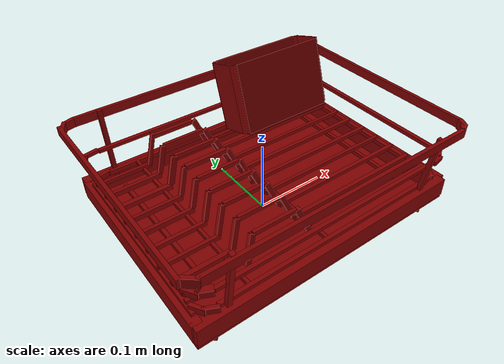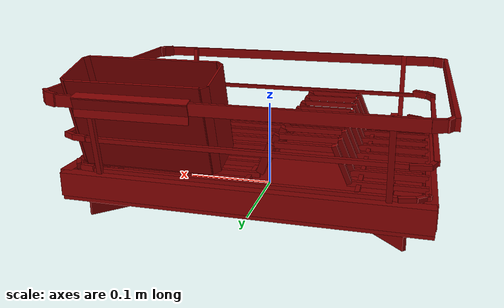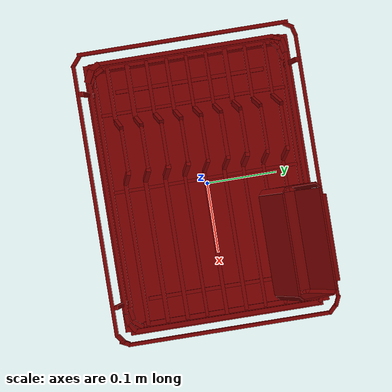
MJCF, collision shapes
<mujoco model="model">
  <compiler angle="radian"/>
  <asset>
    <mesh file="visuals/DishRack026.obj" name="vis"/>
    <texture file="visuals/T_BC001.png" name="material" type="2d"/>
    <material name="material" rgba="1 1 1 1.0" texture="material" shininess="0.4472135901451111" specular="0.3103448502657381"/>
  </asset>
  <default>
    <default class="visual">
      <geom conaffinity="0" contype="0" group="1" type="mesh"/>
    </default>
    <default class="collision">
      <geom group="0" rgba="0.5 0 0 0.5"/>
    </default>
    <default class="region">
      <geom group="1" conaffinity="0" contype="0" rgba="0 1 0 0"/>
    </default>
  </default>
  <worldbody>
    <body>
      <body name="object">
        <geom mesh="vis" type="mesh" solimp="0.998 0.998 0.001" solref="0.001 1" density="100" friction="0.95 0.3 0.1" class="visual" material="material"/>
        <geom class="collision" type="box" pos="0.08329305052757263 -0.001698613166809082 0.05445064976811409" size="0.10270288586616516 0.0026440024375915527 0.0026440024375915527" quat="7.549790126404332e-08 0.0 -0.0 -1.0"/>
        <geom class="collision" type="box" pos="-0.14379674196243286 -0.0016985982656478882 0.05445065349340439" size="0.03854243457317352 0.002292483812198043 0.0034555692691355944" quat="7.549790126404332e-08 0.0 -0.0 -1.0"/>
        <geom class="collision" type="box" pos="-0.0627226009964943 0.005875155329704285 0.09029363840818405" size="0.0298176072537899 0.002258744789287448 0.002781747840344906" quat="7.549790126404332e-08 0.0 -0.0 -1.0"/>
        <geom class="collision" type="box" pos="-0.10026074945926666 0.002629787428304553 0.07460619509220123" size="0.01863647811114788 0.002596606034785509 0.003222791478037834" quat="0.05916285142302513 0.570796012878418 -0.09514839947223663 -0.8134115934371948"/>
        <geom class="collision" type="box" pos="-0.02435043454170227 0.0024863805156201124 0.0742243155837059" size="0.01863648183643818 0.0022587452549487352 0.002897978527471423" quat="0.02136722207069397 0.8232117891311646 -0.10998589545488358 -0.5565688610076904"/>
        <geom class="collision" type="box" pos="0.08329304307699203 0.026372630149126053 0.05445064976811409" size="0.10087007284164429 0.0026794103905558586 0.002676483476534486" quat="7.549790126404332e-08 0.0 -0.0 -1.0"/>
        <geom class="collision" type="box" pos="-0.14379674196243286 0.026372656226158142 0.05445065349340439" size="0.03854243457317352 0.002258744789287448 0.003400446381419897" quat="7.549790126404332e-08 0.0 -0.0 -1.0"/>
        <geom class="collision" type="box" pos="-0.0627226009964943 0.03394640237092972 0.09029363840818405" size="0.0298176072537899 0.002940716687589884 0.0031736386008560658" quat="7.549790126404332e-08 0.0 -0.0 -1.0"/>
        <geom class="collision" type="box" pos="-0.09990579634904861 0.030668074265122414 0.07448145747184753" size="0.01863648183643818 0.0025007566437125206 0.0028824247419834137" quat="0.05916285142302513 0.570796012878418 -0.09514839947223663 -0.8134115934371948"/>
        <geom class="collision" type="box" pos="-0.024211950600147247 0.03054450824856758 0.07428138703107834" size="0.018636485561728477 0.0025354023091495037 0.0031442022882401943" quat="0.02136722207069397 0.8232117891311646 -0.10998589545488358 -0.5565688610076904"/>
        <geom class="collision" type="box" pos="0.08329305052757263 0.05337385833263397 0.05445064976811409" size="0.10087007284164429 0.002258744789287448 0.0026552986819297075" quat="7.549790126404332e-08 0.0 -0.0 -1.0"/>
        <geom class="collision" type="box" pos="-0.14379674196243286 0.05337388813495636 0.05445065349340439" size="0.03854243457317352 0.003342311829328537 0.0031907514203339815" quat="7.549790126404332e-08 0.0 -0.0 -1.0"/>
        <geom class="collision" type="box" pos="-0.0627226009964943 0.061511632055044174 0.09029363840818405" size="0.0298176072537899 0.0025008583907037973 0.00265436596237123" quat="7.549790126404332e-08 0.0 -0.0 -1.0"/>
        <geom class="collision" type="box" pos="-0.09939204156398773 0.05762161314487457 0.07430092245340347" size="0.01863647997379303 0.0022587450221180916 0.004188038408756256" quat="0.05916285142302513 0.570796012878418 -0.09514839947223663 -0.8134115934371948"/>
        <geom class="collision" type="box" pos="-0.025012902915477753 0.05762161314487457 0.07395131886005402" size="0.01863648183643818 0.0030717826448380947 0.003718895837664604" quat="0.02136722207069397 0.8232117891311646 -0.10998589545488358 -0.5565688610076904"/>
        <geom class="collision" type="box" pos="0.08329304307699203 0.08161381632089615 0.05445064976811409" size="0.10087007284164429 0.002258744789287448 0.002851944649592042" quat="7.549790126404332e-08 0.0 -0.0 -1.0"/>
        <geom class="collision" type="box" pos="-0.14379674196243286 0.08161382377147675 0.05445065349340439" size="0.03854243457317352 0.0024089720100164413 0.003414676757529378" quat="7.549790126404332e-08 0.0 -0.0 -1.0"/>
        <geom class="collision" type="box" pos="-0.0627225935459137 0.08976434171199799 0.09029363840818405" size="0.0298176072537899 0.002258744789287448 0.0028649321757256985" quat="7.549790126404332e-08 0.0 -0.0 -1.0"/>
        <geom class="collision" type="box" pos="-0.09983062744140625 0.08590226620435715 0.07445505261421204" size="0.01863647624850273 0.0022587445564568043 0.0033641743939369917" quat="0.05916285142302513 0.570796012878418 -0.09514839947223663 -0.8134115934371948"/>
        <geom class="collision" type="box" pos="-0.023928631097078323 0.08575883507728577 0.07439813017845154" size="0.01863648183643818 0.0022587452549487352 0.003586377250030637" quat="0.02136722207069397 0.8232117891311646 -0.10998589545488358 -0.5565688610076904"/>
        <geom class="collision" type="box" pos="0.08329307287931442 0.10997990518808365 0.05445064976811409" size="0.10087007284164429 0.002258744789287448 0.002666654996573925" quat="7.549790126404332e-08 0.0 -0.0 -1.0"/>
        <geom class="collision" type="box" pos="-0.14379674196243286 0.10997991263866425 0.05445065349340439" size="0.03854243457317352 0.002258744789287448 0.0026470862794667482" quat="7.549790126404332e-08 0.0 -0.0 -1.0"/>
        <geom class="collision" type="box" pos="-0.0627225860953331 0.11755368113517761 0.09029363840818405" size="0.02897796593606472 0.002576015889644623 0.0028175460174679756" quat="7.549790126404332e-08 0.0 -0.0 -1.0"/>
        <geom class="collision" type="box" pos="-0.10010094940662384 0.11429347097873688 0.07455004751682281" size="0.021772366017103195 0.0026388149708509445 0.002638814738020301" quat="0.05916285142302513 0.570796012878418 -0.09514839947223663 -0.8134115934371948"/>
        <geom class="collision" type="box" pos="-0.024607468396425247 0.1141892597079277 0.07411838322877884" size="0.01863648183643818 0.0022587452549487352 0.004043851513415575" quat="0.02136722207069397 0.8232117891311646 -0.10998589545488358 -0.5565688610076904"/>
        <geom class="collision" type="box" pos="0.08329305052757263 -0.02957513928413391 0.05445064976811409" size="0.10087007284164429 0.002258744789287448 0.0026656959671527147" quat="7.549790126404332e-08 0.0 -0.0 -1.0"/>
        <geom class="collision" type="box" pos="-0.14379674196243286 -0.02957511693239212 0.05445065349340439" size="0.03854243457317352 0.002482115523889661 0.0029365161899477243" quat="7.549790126404332e-08 0.0 -0.0 -1.0"/>
        <geom class="collision" type="box" pos="-0.0627226009964943 -0.022001363337039948 0.09029363840818405" size="0.0298176072537899 0.002258744789287448 0.0028855446726083755" quat="7.549790126404332e-08 0.0 -0.0 -1.0"/>
        <geom class="collision" type="box" pos="-0.10005426406860352 -0.025265900418162346 0.07453364133834839" size="0.01863647997379303 0.002740719588473439 0.002955965232104063" quat="0.05916285142302513 0.570796012878418 -0.09514839947223663 -0.8134115934371948"/>
        <geom class="collision" type="box" pos="-0.02501291036605835 -0.025327390059828758 0.07395132631063461" size="0.01863648183643818 0.0028797637205570936 0.003790716640651226" quat="0.02136722207069397 0.8232117891311646 -0.10998589545488358 -0.5565688610076904"/>
        <geom class="collision" type="box" pos="0.08329305052757263 -0.05736041069030762 0.05445064976811409" size="0.10087007284164429 0.0027472779620438814 0.002583146095275879" quat="7.549790126404332e-08 0.0 -0.0 -1.0"/>
        <geom class="collision" type="box" pos="-0.14379674196243286 -0.05780881270766258 0.05445065349340439" size="0.03960170969367027 0.002381016733124852 0.0028600716032087803" quat="7.549790126404332e-08 0.0 -0.0 -1.0"/>
        <geom class="collision" type="box" pos="-0.0627225935459137 -0.049786631017923355 0.09029363840818405" size="0.0298176072537899 0.002258744789287448 0.0028024690691381693" quat="7.549790126404332e-08 0.0 -0.0 -1.0"/>
        <geom class="collision" type="box" pos="-0.09991827607154846 -0.05306379497051239 0.07448584586381912" size="0.01863647997379303 0.003043936099857092 0.002951392438262701" quat="0.05916285142302513 0.570796012878418 -0.09514839947223663 -0.8134115934371948"/>
        <geom class="collision" type="box" pos="-0.02501290664076805 -0.053112659603357315 0.07395131886005402" size="0.01863648183643818 0.00320336758159101 0.0035383941140025854" quat="0.02136722207069397 0.8232117891311646 -0.10998589545488358 -0.5565688610076904"/>
        <geom class="collision" type="box" pos="0.08329303562641144 -0.08542197197675705 0.05445064976811409" size="0.10087007284164429 0.0028494030702859163 0.0027157177682965994" quat="7.549790126404332e-08 0.0 -0.0 -1.0"/>
        <geom class="collision" type="box" pos="-0.14379674196243286 -0.08542196452617645 0.05445065349340439" size="0.03854243457317352 0.0031967235263437033 0.0030366668943315744" quat="7.549790126404332e-08 0.0 -0.0 -1.0"/>
        <geom class="collision" type="box" pos="-0.0627225935459137 -0.07784822583198547 0.09029363840818405" size="0.0298176072537899 0.002258744789287448 0.0031727340538054705" quat="7.549790126404332e-08 0.0 -0.0 -1.0"/>
        <geom class="collision" type="box" pos="-0.09939205646514893 -0.08117421716451645 0.07430091500282288" size="0.01863647997379303 0.0027686443645507097 0.0032172317150980234" quat="0.05916285142302513 0.570796012878418 -0.09514839947223663 -0.8134115934371948"/>
        <geom class="collision" type="box" pos="-0.025012917816638947 -0.08117423951625824 0.07395132631063461" size="0.018636485561728477 0.003174042562022805 0.003173069329932332" quat="0.02136722207069397 0.8232117891311646 -0.10998589545488358 -0.5565688610076904"/>
        <geom class="collision" type="box" pos="0.08329303562641144 -0.11351082473993301 0.05445064976811409" size="0.10087007284164429 0.0026458229403942823 0.00298689235933125" quat="7.549790126404332e-08 0.0 -0.0 -1.0"/>
        <geom class="collision" type="box" pos="-0.14379674196243286 -0.11351081728935242 0.05445065349340439" size="0.03854243457317352 0.0025560620706528425 0.003436016384512186" quat="7.549790126404332e-08 0.0 -0.0 -1.0"/>
        <geom class="collision" type="box" pos="-0.06272261589765549 -0.10593708604574203 0.09029363840818405" size="0.0298176072537899 0.002258744789287448 0.002643960528075695" quat="7.549790126404332e-08 0.0 -0.0 -1.0"/>
        <geom class="collision" type="box" pos="-0.09939207136631012 -0.10926306992769241 0.07430091500282288" size="0.01863647811114788 0.0025844317860901356 0.0033187796361744404" quat="0.05916285142302513 0.570796012878418 -0.09514839947223663 -0.8134115934371948"/>
        <geom class="collision" type="box" pos="-0.025012917816638947 -0.10926308482885361 0.07395131886005402" size="0.01863648183643818 0.0030374007765203714 0.00363434967584908" quat="0.02136722207069397 0.8232117891311646 -0.10998589545488358 -0.5565688610076904"/>
        <geom class="collision" type="box" pos="-0.0006371438503265381 -0.13438528776168823 0.05061807483434677" size="0.15641935169696808 0.002727838698774576 0.003721311455592513" quat="7.549790126404332e-08 0.0 -0.0 -1.0"/>
        <geom class="collision" type="box" pos="-0.18203121423721313 -0.002089187502861023 0.05061807483434677" size="0.12698045372962952 0.0025880401954054832 0.003297429298982024" quat="0.7071071267127991 0.0 0.0 0.7071064710617065"/>
        <geom class="collision" type="box" pos="-0.0006371140480041504 0.13052257895469666 0.05061807483434677" size="0.15641935169696808 0.002695678733289242 0.0031396530102938414" quat="7.549790126404332e-08 0.0 -0.0 -1.0"/>
        <geom class="collision" type="box" pos="0.18219402432441711 -0.0020892322063446045 0.05061807483434677" size="0.11764656007289886 0.003358992515131831 0.0029583654832094908" quat="0.7071071267127991 0.0 0.0 0.7071064710617065"/>
        <geom class="collision" type="box" pos="-0.0006492584943771362 -0.13967561721801758 0.08625175803899765" size="0.16169583797454834 0.0025900292675942183 0.002334938384592533" quat="7.549790126404332e-08 0.0 -0.0 -1.0"/>
        <geom class="collision" type="box" pos="-0.1869744062423706 -0.002091839909553528 0.08625175058841705" size="0.12532836198806763 0.0026406103279441595 0.0024062308948487043" quat="0.7071071267127991 0.0 0.0 0.7071064710617065"/>
        <geom class="collision" type="box" pos="-0.0006492287502624094 0.13536958396434784 0.08625175058841705" size="0.16169580817222595 0.0027885790914297104 0.0023349381517618895" quat="7.549790126404332e-08 0.0 -0.0 -1.0"/>
        <geom class="collision" type="box" pos="0.18724451959133148 -0.0020918988157063723 0.08625175058841705" size="0.12952128052711487 0.003024344565346837 0.002486732555553317" quat="0.7071071267127991 0.0 0.0 0.7071064710617065"/>
        <geom class="collision" type="box" pos="-0.19995397329330444 -0.002091825008392334 0.12967659533023834" size="0.1453312635421753 0.002433264395222068 0.0059398324228823185" quat="0.7071071267127991 0.0 0.0 0.7071064710617065"/>
        <geom class="collision" type="box" pos="0.20064640045166016 -0.0020918846130371094 0.12967659533023834" size="0.1394585222005844 0.002334937686100602 0.0062176804058253765" quat="0.7071071267127991 0.0 0.0 0.7071064710617065"/>
        <geom class="collision" type="box" pos="0.0003461986780166626 0.15072160959243774 0.12967661023139954" size="0.17976516485214233 0.002334937918931246 0.00615532835945487" quat="1.0 0.0 -0.0 -5.642599489874556e-07"/>
        <geom class="collision" type="box" pos="0.00034621357917785645 -0.15481173992156982 0.12967661023139954" size="0.1870928406715393 0.0024301158264279366 0.005932147614657879" quat="1.0 0.0 -0.0 -5.642599489874556e-07"/>
        <geom class="collision" type="box" pos="-0.14701887965202332 -0.0016593337059020996 0.040959641337394714" size="0.10569745302200317 0.0027637702878564596 0.0025705043226480484" quat="0.7071071267127991 0.0 0.0 0.7071064710617065"/>
        <geom class="collision" type="box" pos="-0.007112564519047737 -0.0016593500040471554 0.051920726895332336" size="0.1309802234172821 0.002258744789287448 0.002258744789287448" quat="0.7071071267127991 0.0 0.0 0.7071064710617065"/>
        <geom class="collision" type="box" pos="-0.11657418310642242 -0.0016593337059020996 0.051920726895332336" size="0.1309802234172821 0.002258744789287448 0.002258744789287448" quat="0.7071071267127991 0.0 0.0 0.7071064710617065"/>
        <geom class="collision" type="box" pos="-0.14693135023117065 -0.14346513152122498 0.08557038754224777" size="0.051581971347332 0.003019158262759447 0.0030191584955900908" quat="0.5347155332565308 -0.4626871347427368 0.46268749237060547 0.5347150564193726"/>
        <geom class="collision" type="box" pos="0.14797261357307434 -0.14346513152122498 0.08557039499282837" size="0.04936724901199341 0.0028895277064293623 0.0028895277064293623" quat="0.5347155332565308 -0.4626871347427368 0.46268749237060547 0.5347150564193726"/>
        <geom class="collision" type="box" pos="-0.14693135023117065 0.13981656730175018 0.08626488596200943" size="0.05070149526000023 0.0029547216836363077 0.0030098517891019583" quat="0.46201542019844055 -0.5352957844734192 0.5352968573570251 0.4620145857334137"/>
        <geom class="collision" type="box" pos="0.14797265827655792 0.13981658220291138 0.08626486361026764" size="0.03859039396047592 0.00266763917170465 0.0025936125312000513" quat="0.46201542019844055 -0.5352957844734192 0.5352968573570251 0.4620145857334137"/>
        <geom class="collision" type="box" pos="0.14783573150634766 -0.0016593784093856812 0.040959641337394714" size="0.10569745302200317 0.0026170869823545218 0.00253481138497591" quat="0.7071071267127991 0.0 0.0 0.7071064710617065"/>
        <geom class="collision" type="box" pos="-7.409967656712979e-05 -0.0021582639310508966 0.02163676917552948" size="0.1896807998418808 0.1434251219034195 0.002838313113898039" quat="7.54979225803254e-08 1.0 -1.6292069915380125e-07 1.6292067073209182e-07"/>
        <geom class="collision" type="box" pos="0.15019294619560242 0.11723687499761581 0.010859977453947067" size="0.020738855004310608 0.0022247857414186 0.011162265203893185" quat="1.3241212570846983e-07 -0.9228867888450623 -0.38507139682769775 -1.2128529647270625e-07"/>
        <geom class="collision" type="box" pos="0.14894556999206543 -0.12131242454051971 0.010859977453947067" size="0.02073885314166546 0.002224784577265382 0.01116226427257061" quat="7.867938300876176e-09 -0.924866259098053 0.38029250502586365 -1.7939115082299395e-07"/>
        <geom class="collision" type="box" pos="-0.14981059730052948 -0.12131241708993912 0.010859977453947067" size="0.020738855004310608 0.0022247848100960255 0.011162265203893185" quat="1.7969269094919582e-07 0.3850715458393097 -0.9228867292404175 7.497618526031147e-08"/>
        <geom class="collision" type="box" pos="-0.14856326580047607 0.11723688244819641 0.010859977453947067" size="0.020738855004310608 0.0022247848100960255 0.011162265203893185" quat="1.8007814617249096e-07 -0.38029199838638306 -0.9248664975166321 -7.404558743928646e-08"/>
        <geom class="collision" type="box" pos="0.09990482032299042 0.134443998336792 0.10218632221221924" size="0.06981916725635529 0.0013495730236172676 0.050033558160066605" quat="0.9889756441116333 -0.14807820320129395 -3.586824703916136e-08 -5.759208079325617e-07"/>
        <geom class="collision" type="box" pos="0.09990480542182922 0.0835493728518486 0.11732538044452667" size="0.06981916725635529 0.0013495730236172676 0.050033558160066605" quat="0.9889756441116333 -0.14807820320129395 -3.586824703916136e-08 -5.759208079325617e-07"/>
        <geom class="collision" type="box" pos="0.022781789302825928 0.10930684208869934 0.11064758896827698" size="0.022217722609639168 0.000947622989770025 0.04924539476633072" quat="0.6993109583854675 -0.10470688343048096 -0.10470714420080185 -0.6993118524551392"/>
        <geom class="collision" type="box" pos="0.17580096423625946 0.10962853580713272 0.11025422811508179" size="0.022217722609639168 0.000947622989770025 0.04924539476633072" quat="0.6993109583854675 -0.10470688343048096 -0.10470714420080185 -0.6993118524551392"/>
        <geom class="collision" type="box" pos="0.1732621043920517 0.08600953966379166 0.11748932301998138" size="0.0045469109900295734 0.0009476237464696169 0.04924539476633072" quat="0.35886073112487793 -0.05373191833496094 -0.1379856914281845 -0.9215703010559082"/>
        <geom class="collision" type="box" pos="0.17291903495788574 0.13272270560264587 0.10317988693714142" size="0.004546910524368286 0.0009476239210925996 0.04924539476633072" quat="0.9330652356147766 -0.13970664143562317 -0.049083076417446136 -0.3278142809867859"/>
        <geom class="collision" type="box" pos="0.0255185067653656 0.13272270560264587 0.10317988693714142" size="0.004546910524368286 0.0009476231061853468 0.04924539476633072" quat="0.9215704202651978 -0.1379854381084442 0.05373205244541168 0.35886043310165405"/>
        <geom class="collision" type="box" pos="0.025861598551273346 0.08600956201553345 0.11748932301998138" size="0.004546910524368286 0.0009476239793002605 0.049245402216911316" quat="0.327814519405365 -0.04908297210931778 0.13970687985420227 0.9330651164054871"/>
        <geom class="collision" type="box" pos="0.09990482032299042 0.09437087923288345 0.061574168503284454" size="0.06981917470693588 0.0013495730236172676 0.02750536799430847" quat="0.5946044325828552 -0.8040183782577515 -7.516041478083935e-08 -2.4865795467121643e-07"/>
        <geom class="collision" type="box" pos="0.09964549541473389 0.15162703394889832 0.1358942985534668" size="0.05992313474416733 0.0007072640582919121 0.005674341227859259" quat="0.7990046143531799 0.6013249158859253 1.1257279197707248e-07 -7.909252985882631e-07"/>
        <geom class="collision" type="box" pos="0.09964549541473389 0.1548614501953125 0.1289367973804474" size="0.059923142194747925 0.000707264116499573 0.006068082991987467" quat="0.13267366588115692 0.9911597967147827 4.4059879655833356e-07 -3.5643404316942906e-07"/>
        <geom class="collision" type="box" pos="0.09964551031589508 0.15355923771858215 0.11913204193115234" size="0.05992312729358673 0.0007072640000842512 0.004493714775890112" quat="0.046129852533340454 -0.9989354610443115 -3.7833342503290623e-07 2.489429675733845e-07"/>
        <geom class="collision" type="box" pos="0.19142289459705353 -0.14981193840503693 0.12967661023139954" size="0.006934481672942638 0.00281967269256711 0.006883093621581793" quat="0.9528968334197998 0.0 0.0 0.30329468846321106"/>
        <geom class="collision" type="box" pos="0.18593727052211761 0.14924253523349762 0.13030104339122772" size="0.007700122427195311 0.002334937918931246 0.0068931193090975285" quat="0.20673134922981262 0.0 0.0 0.9783977270126343"/>
        <geom class="collision" type="box" pos="-7.414961146423593e-05 -0.1402837485074997 0.03674358129501343" size="0.1896807998418808 0.006598015781491995 0.012698305770754814" quat="7.54979225803254e-08 1.0 -1.6292069915380125e-07 1.6292067073209182e-07"/>
        <geom class="collision" type="box" pos="-7.405917131109163e-05 0.13727127015590668 0.036743540316820145" size="0.1896807998418808 0.006598015781491995 0.012698305770754814" quat="7.54979225803254e-08 1.0 -1.6292069915380125e-07 1.6292067073209182e-07"/>
        <geom class="collision" type="box" pos="-0.1846441775560379 -0.002815744373947382 0.03674349561333656" size="0.1370706707239151 0.006598015781491995 0.012698305770754814" quat="1.910638758317873e-07 0.70710688829422 0.7071066498756409 8.42936600520261e-08"/>
        <geom class="collision" type="box" pos="0.1885036826133728 -0.00281586148776114 0.0367436408996582" size="0.1370706707239151 0.006598015781491995 0.012698305770754814" quat="1.910638758317873e-07 0.70710688829422 0.7071066498756409 8.42936600520261e-08"/>
        <geom class="collision" type="box" pos="0.1962062418460846 0.1416877955198288 0.13030104339122772" size="0.007700122427195311 0.002334937686100602 0.0068931193090975285" quat="0.38515526056289673 0.0 0.0 0.9228518009185791"/>
        <geom class="collision" type="box" pos="0.16704879701137543 0.13622327148914337 0.08730350434780121" size="0.007700122427195311 0.0023349374532699585 0.0030792350880801678" quat="0.056866783648729324 0.0 0.0 0.9983817934989929"/>
        <geom class="collision" type="box" pos="0.1806349754333496 0.13125935196876526 0.08730350434780121" size="0.007700123358517885 0.0023349374532699585 0.0030792350880801678" quat="0.24162554740905762 0.0 0.0 0.9703695774078369"/>
        <geom class="collision" type="box" pos="0.1647963970899582 0.12963934242725372 0.05263454094529152" size="0.007700122427195311 0.0023349374532699585 0.0030792350880801678" quat="0.056866783648729324 0.0 0.0 0.9983817934989929"/>
        <geom class="collision" type="box" pos="0.1804427206516266 0.1214723214507103 0.05263454094529152" size="0.007700123358517885 0.0023349374532699585 0.0030792350880801678" quat="-0.8777662515640259 0.0 0.0 0.4790892004966736"/>
        <geom class="collision" type="box" pos="-0.19100555777549744 -0.1505856215953827 0.12967661023139954" size="0.009431353770196438 0.0024301158264279366 0.005932147614657879" quat="0.9394705891609192 0.0 -0.0 -0.34262949228286743"/>
        <geom class="collision" type="box" pos="-0.17180421948432922 -0.1378147304058075 0.08848123252391815" size="0.009431354701519012 0.004380300175398588 0.0041321516036987305" quat="0.9731106162071228 0.0 -0.0 -0.2303381860256195"/>
        <geom class="collision" type="box" pos="-0.18256068229675293 -0.13021132349967957 0.08848123252391815" size="0.009431356564164162 0.0036595675628632307 0.0041321516036987305" quat="0.8706509470939636 0.0 -0.0 -0.49190136790275574"/>
        <geom class="collision" type="box" pos="-0.16595180332660675 -0.1364317089319229 0.05476425215601921" size="0.009431354701519012 0.002430116292089224 0.004132152069360018" quat="0.9731106162071228 0.0 -0.0 -0.2303381860256195"/>
        <geom class="collision" type="box" pos="-0.17661511898040771 -0.12772682309150696 0.05476425215601921" size="0.009431354701519012 0.002430116292089224 0.004132152069360018" quat="0.8706509470939636 0.0 -0.0 -0.49190136790275574"/>
        <geom class="collision" type="box" pos="0.19681832194328308 -0.14544425904750824 0.12967661023139954" size="0.006934481672942638 0.00281967269256711 0.006883093621581793" quat="0.8485378623008728 0.0 0.0 0.5291346907615662"/>
        <geom class="collision" type="box" pos="0.1814081221818924 -0.13422520458698273 0.08598373830318451" size="0.006934481672942638 0.00281967269256711 0.002960451180115342" quat="0.9548816680908203 0.0 0.0 0.2969866096973419"/>
        <geom class="collision" type="box" pos="0.1702605038881302 -0.14000967144966125 0.08598373830318451" size="0.008766144514083862 0.00281967269256711 0.002960451180115342" quat="0.9965357780456543 0.0 0.0 0.0831649899482727"/>
        <geom class="collision" type="box" pos="0.16417300701141357 -0.1344148814678192 0.052763935178518295" size="0.008766144514083862 0.00281967269256711 0.002960451180115342" quat="0.9965357780456543 0.0 0.0 0.0831649899482727"/>
        <geom class="collision" type="box" pos="0.18028663098812103 -0.1280033141374588 0.052763935178518295" size="0.008766144514083862 0.00281967269256711 0.002960451180115342" quat="0.9023138284683228 0.0 0.0 0.43107977509498596"/>
        <geom class="collision" type="box" pos="-0.19471634924411774 0.1432378739118576 0.12967659533023834" size="0.007437427993863821 0.002433264395222068 0.0059398324228823185" quat="0.8702844977378845 0.0 0.0 0.4925493597984314"/>
        <geom class="collision" type="box" pos="-0.18516002595424652 0.14921759068965912 0.12967659533023834" size="0.007437427993863821 0.002433264162391424 0.0059398324228823185" quat="0.9914292693138123 0.0 0.0 0.13064461946487427"/>
        <geom class="collision" type="box" pos="-0.1833975613117218 0.1274157613515854 0.08578727394342422" size="0.006479909177869558 0.002640610095113516 0.0024062308948487043" quat="0.8258970975875854 0.0 0.0 0.5638208985328674"/>
        <geom class="collision" type="box" pos="-0.17238447070121765 0.13582034409046173 0.08625175058841705" size="0.010010934434831142 0.0026406103279441595 0.0024062308948487043" quat="-0.08521133661270142 0.0 0.0 0.9963629245758057"/>
        <geom class="collision" type="box" pos="-0.1775592714548111 0.12441634386777878 0.05061807483434677" size="0.008503186516463757 0.0025880401954054832 0.003297429298982024" quat="0.9419378638267517 0.0 0.0 0.33578717708587646"/>
        <geom class="collision" type="box" pos="-0.16266316175460815 0.13067519664764404 0.05061807483434677" size="0.008503186516463757 0.0025880401954054832 0.003297429298982024" quat="0.9913297891616821 0.0 0.0 0.13139708340168"/>
        <geom class="region" name="reg_main" type="box" pos="0.00032134726643562317 0.0003710612654685974 0.08232720196247101" size="0.20149996876716614 0.1564129889011383 0.08264045417308807"/>
      </body>
    </body>
  </worldbody>
  <actuator/>
</mujoco>
